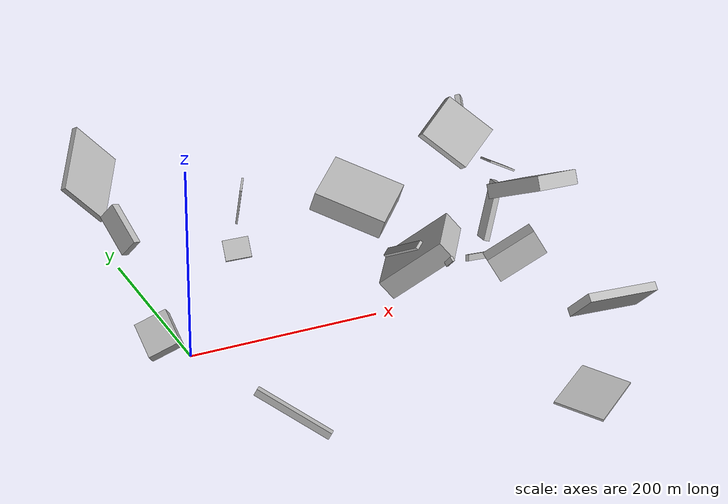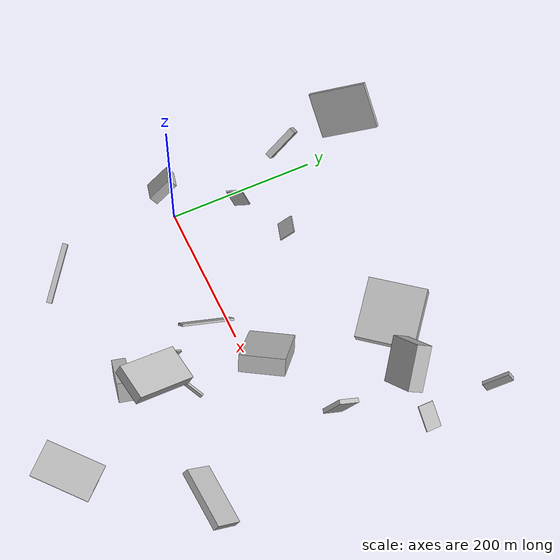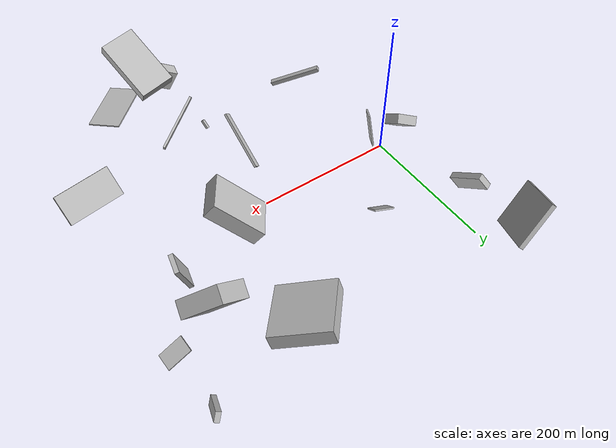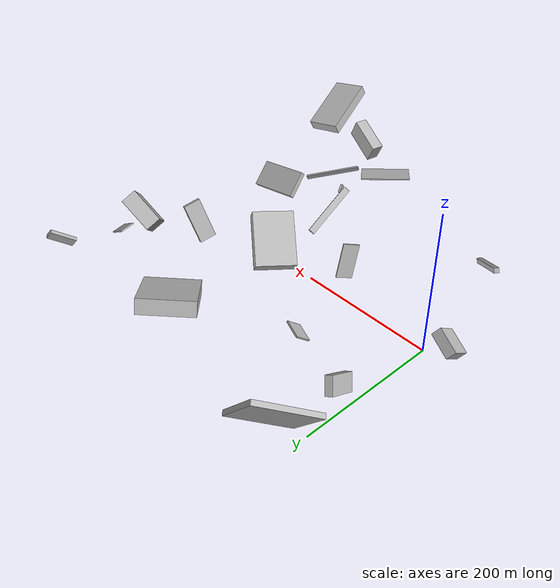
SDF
<sdf version="1.6">
 <world name="default">
  <scene>
   <sky><clouds><speed>12</speed></clouds></sky>
   <ambient>0.4 0.4 0.4 1</ambient>
   <background>0.7 0.7 0.7 1</background>
   <shadows>1</shadows>
  </scene>
  <gravity>0 0 -9.8066</gravity>
  <magnetic_field>6e-06 2.3e-05 -4.2e-05</magnetic_field>
  <physics default="0" name="default_physics" type="ode">
   <ode>
    <solver>
     <type>quick</type>
     <iters>10</iters>
     <sor>1.0</sor>
     <use_dynamic_moi_rescaling>0</use_dynamic_moi_rescaling>
    </solver>
    <constraints>
     <cfm>0</cfm>
     <erp>0.2</erp>
     <contact_max_correcting_vel>100</contact_max_correcting_vel>
     <contact_surface_layer>0.001</contact_surface_layer>
    </constraints>
   </ode>
   <max_step_size>0.004</max_step_size>
   <real_time_factor>1</real_time_factor>
   <real_time_update_rate>250</real_time_update_rate>
  </physics>
  <light name="sun" type="directional">
   <pose>0 0 10 0 0 0</pose>
   <diffuse>0.8 0.8 0.8 1</diffuse>
   <specular>0.2 0.2 0.2 1</specular>
   <attenuation>
    <range>1000</range>
    <constant>0.9</constant>
    <linear>0.01</linear>
    <quadratic>0.001</quadratic>
   </attenuation>
   <direction>-0.5 0.1 -0.9</direction>
  </light>
  <model name="building_1">
   <static>0</static>
   <pose>369.9284456634403 165.70733702007993 94.31529194158783 0.8506031355422039 -0.6838831060645851 0.28494925201398585</pose>
   <link name="link">
    <gravity>0</gravity>
    <pose>0 0 11.0 0 0 0</pose>
    <collision name="collision"><geometry><box><size>50 58 22</size></box></geometry></collision>
    <visual name="visual">
     <cast_shadows>0</cast_shadows>
     <geometry><box><size>50 58 22</size></box></geometry>
     <material>
      <script>
       <uri>model://HANNAS_wall/materials/scripts</uri>
       <uri>model://HANNAS_wall/materials/textures</uri>
       <name>vrc/HANNAS_wall</name>
      </script>
     </material>
    </visual>
   </link>
  </model>
  <model name="building_2">
   <static>0</static>
   <pose>241.94716198748193 -6.297299857178882 41.82319653335601 1.4539494910166897 -0.8621925429557008 2.6477181535146994</pose>
   <link name="link">
    <gravity>0</gravity>
    <pose>0 0 29.5 0 0 0</pose>
    <collision name="collision"><geometry><box><size>23 80 59</size></box></geometry></collision>
    <visual name="visual">
     <cast_shadows>0</cast_shadows>
     <geometry><box><size>23 80 59</size></box></geometry>
     <material>
      <script>
       <uri>model://HANNAS_wall/materials/scripts</uri>
       <uri>model://HANNAS_wall/materials/textures</uri>
       <name>vrc/HANNAS_wall</name>
      </script>
     </material>
    </visual>
   </link>
  </model>
  <model name="building_3">
   <static>0</static>
   <pose>440.6502226538351 -119.11641908996432 27.50592021047533 -1.435415684195258 0.7826208536314577 1.7404818584328217</pose>
   <link name="link">
    <gravity>0</gravity>
    <pose>0 0 40.0 0 0 0</pose>
    <collision name="collision"><geometry><box><size>43 9 80</size></box></geometry></collision>
    <visual name="visual">
     <cast_shadows>0</cast_shadows>
     <geometry><box><size>43 9 80</size></box></geometry>
     <material>
      <script>
       <uri>model://HANNAS_wall/materials/scripts</uri>
       <uri>model://HANNAS_wall/materials/textures</uri>
       <name>vrc/HANNAS_wall</name>
      </script>
     </material>
    </visual>
   </link>
  </model>
  <model name="building_4">
   <static>0</static>
   <pose>294.58944023048906 219.57267484533253 32.831331525506855 1.6616328552854847 0.31073550416431067 -0.6930881701749133</pose>
   <link name="link">
    <gravity>0</gravity>
    <pose>0 0 39.0 0 0 0</pose>
    <collision name="collision"><geometry><box><size>80 22 78</size></box></geometry></collision>
    <visual name="visual">
     <cast_shadows>0</cast_shadows>
     <geometry><box><size>80 22 78</size></box></geometry>
     <material>
      <script>
       <uri>model://HANNAS_wall/materials/scripts</uri>
       <uri>model://HANNAS_wall/materials/textures</uri>
       <name>vrc/HANNAS_wall</name>
      </script>
     </material>
    </visual>
   </link>
  </model>
  <model name="building_5">
   <static>0</static>
   <pose>254.22791148132512 -169.6688073203527 150.29334880296935 3.0870324803452007 -0.5171596643787971 -0.19797894606347471</pose>
   <link name="link">
    <gravity>0</gravity>
    <pose>0 0 13.5 0 0 0</pose>
    <collision name="collision"><geometry><box><size>51 17 27</size></box></geometry></collision>
    <visual name="visual">
     <cast_shadows>0</cast_shadows>
     <geometry><box><size>51 17 27</size></box></geometry>
     <material>
      <script>
       <uri>model://HANNAS_wall/materials/scripts</uri>
       <uri>model://HANNAS_wall/materials/textures</uri>
       <name>vrc/HANNAS_wall</name>
      </script>
     </material>
    </visual>
   </link>
  </model>
  <model name="building_6">
   <static>0</static>
   <pose>28.386189727549088 -180.92015178282838 27.14448184481078 -1.8203238498634617 -1.0999788631317853 -0.4509417238969597</pose>
   <link name="link">
    <gravity>0</gravity>
    <pose>0 0 3.5 0 0 0</pose>
    <collision name="collision"><geometry><box><size>7 80 7</size></box></geometry></collision>
    <visual name="visual">
     <cast_shadows>0</cast_shadows>
     <geometry><box><size>7 80 7</size></box></geometry>
     <material>
      <script>
       <uri>model://HANNAS_wall/materials/scripts</uri>
       <uri>model://HANNAS_wall/materials/textures</uri>
       <name>vrc/HANNAS_wall</name>
      </script>
     </material>
    </visual>
   </link>
  </model>
  <model name="building_7">
   <static>0</static>
   <pose>324.9743870695738 -240.8669235222104 27.58306324135706 -1.5206981587794548 -0.14704187510308375 2.282130617771876</pose>
   <link name="link">
    <gravity>0</gravity>
    <pose>0 0 40.0 0 0 0</pose>
    <collision name="collision"><geometry><box><size>49 2 80</size></box></geometry></collision>
    <visual name="visual">
     <cast_shadows>0</cast_shadows>
     <geometry><box><size>49 2 80</size></box></geometry>
     <material>
      <script>
       <uri>model://HANNAS_wall/materials/scripts</uri>
       <uri>model://HANNAS_wall/materials/textures</uri>
       <name>vrc/HANNAS_wall</name>
      </script>
     </material>
    </visual>
   </link>
  </model>
  <model name="building_8">
   <static>0</static>
   <pose>87.15445242201714 123.33806549630407 36.81492049802898 1.3910275705459172 -0.6715051789161066 1.3841526563171727</pose>
   <link name="link">
    <gravity>0</gravity>
    <pose>0 0 13.5 0 0 0</pose>
    <collision name="collision"><geometry><box><size>23 2 27</size></box></geometry></collision>
    <visual name="visual">
     <cast_shadows>0</cast_shadows>
     <geometry><box><size>23 2 27</size></box></geometry>
     <material>
      <script>
       <uri>model://HANNAS_wall/materials/scripts</uri>
       <uri>model://HANNAS_wall/materials/textures</uri>
       <name>vrc/HANNAS_wall</name>
      </script>
     </material>
    </visual>
   </link>
  </model>
  <model name="building_9">
   <static>0</static>
   <pose>285.9252390415857 -105.90748339585653 170.92948788307524 1.092728405035832 0.11276902154837753 0.15905631000657663</pose>
   <link name="link">
    <gravity>0</gravity>
    <pose>0 0 40.0 0 0 0</pose>
    <collision name="collision"><geometry><box><size>45 14 80</size></box></geometry></collision>
    <visual name="visual">
     <cast_shadows>0</cast_shadows>
     <geometry><box><size>45 14 80</size></box></geometry>
     <material>
      <script>
       <uri>model://HANNAS_wall/materials/scripts</uri>
       <uri>model://HANNAS_wall/materials/textures</uri>
       <name>vrc/HANNAS_wall</name>
      </script>
     </material>
    </visual>
   </link>
  </model>
  <model name="building_10">
   <static>0</static>
   <pose>233.76205443947677 -89.47084929264066 97.90464949471182 -2.286345238739283 -0.04466576200641406 -2.8836981942746513</pose>
   <link name="link">
    <gravity>0</gravity>
    <pose>0 0 2.5 0 0 0</pose>
    <collision name="collision"><geometry><box><size>3 12 5</size></box></geometry></collision>
    <visual name="visual">
     <cast_shadows>0</cast_shadows>
     <geometry><box><size>3 12 5</size></box></geometry>
     <material>
      <script>
       <uri>model://HANNAS_wall/materials/scripts</uri>
       <uri>model://HANNAS_wall/materials/textures</uri>
       <name>vrc/HANNAS_wall</name>
      </script>
     </material>
    </visual>
   </link>
  </model>
  <model name="building_11">
   <static>0</static>
   <pose>361.8865371457478 57.554197217167285 52.491826520359844 -2.3200786409458725 -1.1974200130911166 0.5133877464408487</pose>
   <link name="link">
    <gravity>0</gravity>
    <pose>0 0 12.5 0 0 0</pose>
    <collision name="collision"><geometry><box><size>61 6 25</size></box></geometry></collision>
    <visual name="visual">
     <cast_shadows>0</cast_shadows>
     <geometry><box><size>61 6 25</size></box></geometry>
     <material>
      <script>
       <uri>model://HANNAS_wall/materials/scripts</uri>
       <uri>model://HANNAS_wall/materials/textures</uri>
       <name>vrc/HANNAS_wall</name>
      </script>
     </material>
    </visual>
   </link>
  </model>
  <model name="building_12">
   <static>0</static>
   <pose>-26.994627922779394 223.8408345593604 67.72175846490347 0.842394573152025 -0.8426050526151327 -3.0850270369308244</pose>
   <link name="link">
    <gravity>0</gravity>
    <pose>0 0 40.0 0 0 0</pose>
    <collision name="collision"><geometry><box><size>63 6 80</size></box></geometry></collision>
    <visual name="visual">
     <cast_shadows>0</cast_shadows>
     <geometry><box><size>63 6 80</size></box></geometry>
     <material>
      <script>
       <uri>model://HANNAS_wall/materials/scripts</uri>
       <uri>model://HANNAS_wall/materials/textures</uri>
       <name>vrc/HANNAS_wall</name>
      </script>
     </material>
    </visual>
   </link>
  </model>
  <model name="building_13">
   <static>0</static>
   <pose>437.5332607321981 161.7686892423813 41.32121305933671 -1.0512801687947362 0.18035979068800964 1.6285435103533838</pose>
   <link name="link">
    <gravity>0</gravity>
    <pose>0 0 16.5 0 0 0</pose>
    <collision name="collision"><geometry><box><size>21 2 33</size></box></geometry></collision>
    <visual name="visual">
     <cast_shadows>0</cast_shadows>
     <geometry><box><size>21 2 33</size></box></geometry>
     <material>
      <script>
       <uri>model://HANNAS_wall/materials/scripts</uri>
       <uri>model://HANNAS_wall/materials/textures</uri>
       <name>vrc/HANNAS_wall</name>
      </script>
     </material>
    </visual>
   </link>
  </model>
  <model name="building_14">
   <static>0</static>
   <pose>-29.561963082740064 1.2421918989025997 28.07806823854212 -0.5561311266066907 -0.6078078600704571 1.659576356843887</pose>
   <link name="link">
    <gravity>0</gravity>
    <pose>0 0 7.0 0 0 0</pose>
    <collision name="collision"><geometry><box><size>37 34 14</size></box></geometry></collision>
    <visual name="visual">
     <cast_shadows>0</cast_shadows>
     <geometry><box><size>37 34 14</size></box></geometry>
     <material>
      <script>
       <uri>model://HANNAS_wall/materials/scripts</uri>
       <uri>model://HANNAS_wall/materials/textures</uri>
       <name>vrc/HANNAS_wall</name>
      </script>
     </material>
    </visual>
   </link>
  </model>
  <model name="building_15">
   <static>0</static>
   <pose>-5.110718422158907 165.42317075153443 62.59560612817369 -1.067705751536333 0.8915539280333066 2.378661866400369</pose>
   <link name="link">
    <gravity>0</gravity>
    <pose>0 0 4.5 0 0 0</pose>
    <collision name="collision"><geometry><box><size>22 48 9</size></box></geometry></collision>
    <visual name="visual">
     <cast_shadows>0</cast_shadows>
     <geometry><box><size>22 48 9</size></box></geometry>
     <material>
      <script>
       <uri>model://HANNAS_wall/materials/scripts</uri>
       <uri>model://HANNAS_wall/materials/textures</uri>
       <name>vrc/HANNAS_wall</name>
      </script>
     </material>
    </visual>
   </link>
  </model>
  <model name="building_16">
   <static>0</static>
   <pose>79.20967340163403 66.28426847025801 104.12449416672382 0.14419251161086663 -0.22758824655347 1.0667209626891756</pose>
   <link name="link">
    <gravity>0</gravity>
    <pose>0 0 21.5 0 0 0</pose>
    <collision name="collision"><geometry><box><size>20 2 43</size></box></geometry></collision>
    <visual name="visual">
     <cast_shadows>0</cast_shadows>
     <geometry><box><size>20 2 43</size></box></geometry>
     <material>
      <script>
       <uri>model://HANNAS_wall/materials/scripts</uri>
       <uri>model://HANNAS_wall/materials/textures</uri>
       <name>vrc/HANNAS_wall</name>
      </script>
     </material>
    </visual>
   </link>
  </model>
  <model name="building_17">
   <static>0</static>
   <pose>209.67249958185212 -42.176768324398104 91.0834658258111 0.7592157348649773 -0.5377614661465948 -1.5571032307472126</pose>
   <link name="link">
    <gravity>0</gravity>
    <pose>0 0 1.5 0 0 0</pose>
    <collision name="collision"><geometry><box><size>80 9 3</size></box></geometry></collision>
    <visual name="visual">
     <cast_shadows>0</cast_shadows>
     <geometry><box><size>80 9 3</size></box></geometry>
     <material>
      <script>
       <uri>model://HANNAS_wall/materials/scripts</uri>
       <uri>model://HANNAS_wall/materials/textures</uri>
       <name>vrc/HANNAS_wall</name>
      </script>
     </material>
    </visual>
   </link>
  </model>
  <model name="building_18">
   <static>0</static>
   <pose>420.0924613115285 239.4093491556867 62.37413401738732 0.928318341127155 0.2890687941873356 2.6256733066724696</pose>
   <link name="link">
    <gravity>0</gravity>
    <pose>0 0 18.5 0 0 0</pose>
    <collision name="collision"><geometry><box><size>6 12 37</size></box></geometry></collision>
    <visual name="visual">
     <cast_shadows>0</cast_shadows>
     <geometry><box><size>6 12 37</size></box></geometry>
     <material>
      <script>
       <uri>model://HANNAS_wall/materials/scripts</uri>
       <uri>model://HANNAS_wall/materials/textures</uri>
       <name>vrc/HANNAS_wall</name>
      </script>
     </material>
    </visual>
   </link>
  </model>
  <model name="building_19">
   <static>0</static>
   <pose>266.1423392850569 -107.8454843694557 101.28531624940535 0.26579880458530064 -0.3357821577179031 -2.588032991562264</pose>
   <link name="link">
    <gravity>0</gravity>
    <pose>0 0 3.0 0 0 0</pose>
    <collision name="collision"><geometry><box><size>80 3 6</size></box></geometry></collision>
    <visual name="visual">
     <cast_shadows>0</cast_shadows>
     <geometry><box><size>80 3 6</size></box></geometry>
     <material>
      <script>
       <uri>model://HANNAS_wall/materials/scripts</uri>
       <uri>model://HANNAS_wall/materials/textures</uri>
       <name>vrc/HANNAS_wall</name>
      </script>
     </material>
    </visual>
   </link>
  </model>
 </world>
</sdf>
